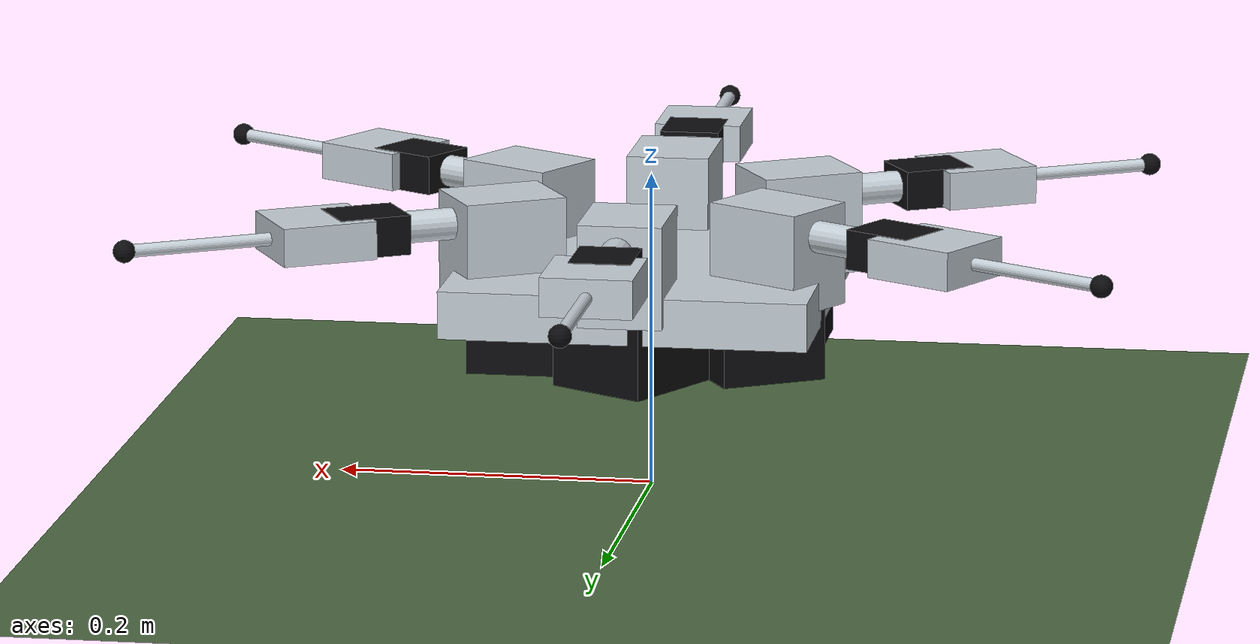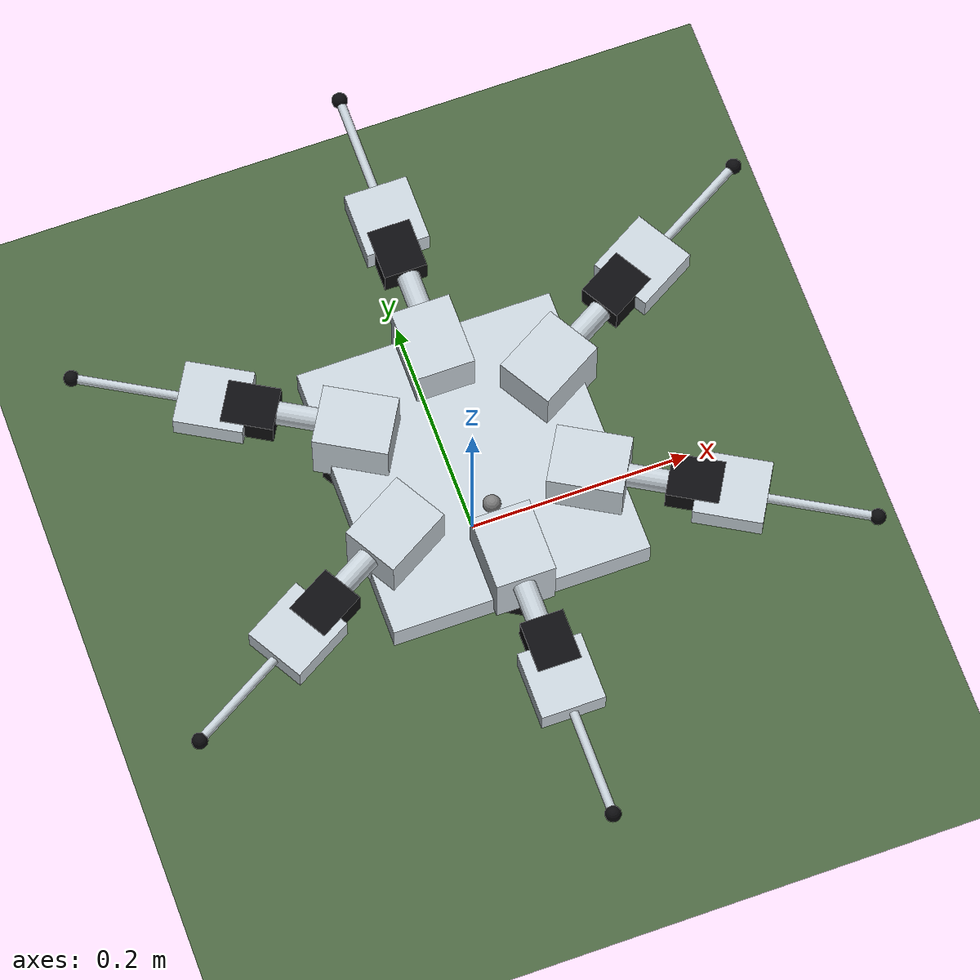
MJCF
<mujoco model="hexapod_sts3215_mesh_mjx">
  <compiler angle="radian" coordinate="local" autolimits="true"/>
  <option gravity="0 0 -9.81" timestep="0.002" iterations="50" solver="Newton" cone="elliptic"/>
  <visual>
    <global offwidth="1920" offheight="1200"/>
  </visual>

  <default>
    <joint armature="0.0004" damping="0.01" limited="true"/>
    <geom solref="0.006 1" solimp="0.95 0.99 0.001"/>
    <default class="visual">
      <geom contype="0" conaffinity="0" group="2" density="0"/>
    </default>
    <default class="collision">
      <geom group="3" rgba="1 0 0 0.18" condim="4" friction="1.3 0.04 0.0001"/>
    </default>
    <default class="foot">
      <geom group="3" rgba="0.02 0.02 0.02 1" condim="6" friction="2.0 0.1 0.001"
            solref="0.01 1" solimp="0.95 0.99 0.001"/>
    </default>
    <default class="legcol">
      <geom contype="4" conaffinity="0" group="3" rgba="1 0.55 0 0.25"
            condim="3" friction="1.0 0.02 0.0001"/>
    </default>
  </default>

  <asset>
    <texture name="skybox" type="skybox" builtin="gradient" rgb1="0.7 0.85 1.0" rgb2="0.4 0.5 0.7" width="256" height="256"/>
    <texture name="terrain_tex" type="2d" builtin="checker" rgb1="0.34 0.45 0.30" rgb2="0.26 0.36 0.22" width="320" height="320"/>
    <material name="terrain_mat" texture="terrain_tex" texrepeat="12 12" reflectance="0.05" shininess="0.0"/>
  </asset>

  <worldbody>
    <light name="sun" pos="2 -1.5 2.2" dir="-0.6 0.4 -1" castshadow="true"/>
    <geom name="terrain" type="plane" size="8 8 0.05" material="terrain_mat" friction="1.5 0.05 0.0001" condim="4" conaffinity="5"/>

    <body name="chassis" pos="0 0 0.125459">
      <freejoint name="root"/>
      <site name="chassis_imu" pos="0.002000 -0.043000 0.024800" size="0.008"/>
      <inertial pos="0.00017444 -0.00042499 0.00320286" quat="-0.01850534 0.70604293 0.02762688 0.70738793" mass="1.472688" diaginertia="7.0243e-03 4.6650e-03 4.6420e-03"/>
      <geom class="collision" name="chassis_box" type="box" pos="0.000000 0.000000 0.009000" size="0.114603 0.124852 0.015000"/>
      <geom class="visual" rgba="0.78 0.82 0.85 1" type="box" pos="0.000000 0.000000 0.009000" size="0.114603 0.124852 0.015000"/>
      <geom class="collision" name="lipo_battery_0" type="box" pos="0.009500 -0.016454 -0.019250" size="0.040976 0.033472 0.013250"/>
      <geom class="visual" rgba="0.16 0.16 0.24 1" type="box" pos="0.009500 -0.016454 -0.019250" size="0.040976 0.033472 0.013250"/>
      <geom class="collision" name="lipo_battery_1" type="box" pos="-0.009500 0.016454 -0.019250" size="0.040976 0.033472 0.013250"/>
      <geom class="visual" rgba="0.16 0.16 0.24 1" type="box" pos="-0.009500 0.016454 -0.019250" size="0.040976 0.033472 0.013250"/>
      <geom class="collision" name="L0_yaw_servo_col" type="box" pos="0.070514 0.040134 -0.014875" quat="1.00000000 0 0 0.00000000" size="0.035602 0.033771 0.025125"/>
      <geom class="visual" rgba="0.05 0.05 0.06 1" type="box" pos="0.070514 0.040134 -0.014875" quat="1.00000000 0 0 0.00000000" size="0.035602 0.033771 0.025125"/>
      <geom class="collision" name="L1_yaw_servo_col" type="box" pos="0.000500 0.081134 -0.014875" quat="0.86602540 0 0 0.50000000" size="0.035602 0.033771 0.025125"/>
      <geom class="visual" rgba="0.05 0.05 0.06 1" type="box" pos="0.000500 0.081134 -0.014875" quat="0.86602540 0 0 0.50000000" size="0.035602 0.033771 0.025125"/>
      <geom class="collision" name="L2_yaw_servo_col" type="box" pos="-0.070014 0.041000 -0.014875" quat="0.50000000 0 0 0.86602540" size="0.035602 0.033771 0.025125"/>
      <geom class="visual" rgba="0.05 0.05 0.06 1" type="box" pos="-0.070014 0.041000 -0.014875" quat="0.50000000 0 0 0.86602540" size="0.035602 0.033771 0.025125"/>
      <geom class="collision" name="L3_yaw_servo_col" type="box" pos="-0.070514 -0.040134 -0.014875" quat="0.00000000 0 0 1.00000000" size="0.035602 0.033771 0.025125"/>
      <geom class="visual" rgba="0.05 0.05 0.06 1" type="box" pos="-0.070514 -0.040134 -0.014875" quat="0.00000000 0 0 1.00000000" size="0.035602 0.033771 0.025125"/>
      <geom class="collision" name="L4_yaw_servo_col" type="box" pos="-0.000500 -0.081134 -0.014875" quat="-0.50000000 0 0 0.86602540" size="0.035602 0.033771 0.025125"/>
      <geom class="visual" rgba="0.05 0.05 0.06 1" type="box" pos="-0.000500 -0.081134 -0.014875" quat="-0.50000000 0 0 0.86602540" size="0.035602 0.033771 0.025125"/>
      <geom class="collision" name="L5_yaw_servo_col" type="box" pos="0.070014 -0.041000 -0.014875" quat="-0.86602540 0 0 0.50000000" size="0.035602 0.033771 0.025125"/>
      <geom class="visual" rgba="0.05 0.05 0.06 1" type="box" pos="0.070014 -0.041000 -0.014875" quat="-0.86602540 0 0 0.50000000" size="0.035602 0.033771 0.025125"/>

      <body name="L0_yaw" pos="0.086603 0.050000 0.015250" quat="0.96592583 0 0 0.25881905">
        <joint name="L0_yaw" type="hinge" axis="0 0 1" range="-0.61 0.61"/>
        <inertial pos="-0.00045307 -0.00127815 0.03147338" quat="0.72531512 0.00583168 -0.03206965 0.68764489" mass="0.161884" diaginertia="8.0633e-05 6.4028e-05 5.1623e-05"/>
        <geom class="visual" rgba="0.78 0.82 0.85 1" type="box" pos="0.000000 0.000000 0.023150" size="0.032700 0.026200 0.032150"/>
        <geom class="visual" rgba="0.05 0.05 0.06 1" type="box" pos="0.000000 0.000500 0.038400" size="0.022700 0.019150 0.012400"/>
        <body name="L0_femur" pos="0.012500 -0.025650 0.038400">
          <joint name="L0_pitch" type="hinge" axis="0 1 0" range="-1.4 0.52"/>
          <inertial pos="0.06408185 0.02393982 0.00175845" quat="-0.00747942 0.69471490 -0.01452282 0.71909969" mass="0.143475" diaginertia="1.5226e-04 1.4084e-04 3.4208e-05"/>
          <geom class="legcol" name="L0_femur_col" type="capsule" fromto="0 0.024150 0 0.090000 0.024150 0" size="0.010"/>
          <geom class="legcol" name="L0_knee_servo_col" type="box" pos="0.077500 0.026150 -0.000000" size="0.022700 0.019150 0.012400"/>
          <geom class="visual" rgba="0.78 0.82 0.85 1" type="capsule" fromto="0 0.024150 0 0.090000 0.024150 0" size="0.010"/>
          <geom class="visual" rgba="0.05 0.05 0.06 1" type="box" pos="0.077500 0.026150 -0.000000" size="0.022700 0.019150 0.012400"/>
          <body name="L0_tibia" pos="0.090000 0 0">
            <joint name="L0_knee" type="hinge" axis="0 1 0" range="-0.35 2.62"/>
            <inertial pos="0.02283314 0.02415000 -0.00000000" quat="-0.00000000 0.70710678 0.00000000 0.70710678" mass="0.029727" diaginertia="3.7180e-05 2.9908e-05 8.8284e-06"/>
            <geom class="legcol" name="L0_tibia_yoke_col" type="box" pos="0.019500 0.024150 -0.000000" size="0.030000 0.028150 0.012000"/>
            <geom class="legcol" name="L0_tibia_col" type="capsule" fromto="0.029500 0.024150 0.000000 0.138000 0.024150 0.000000" size="0.004000"/>
            <geom class="visual" rgba="0.78 0.82 0.85 1" type="box" pos="0.019500 0.024150 -0.000000" size="0.030000 0.028150 0.012000"/>
            <geom class="visual" rgba="0.78 0.82 0.85 1" type="capsule" fromto="0.029500 0.024150 0.000000 0.138000 0.024150 0.000000" size="0.004000"/>
            <body name="L0_pad" pos="0.138000 0.024150 0.000000">
              <inertial pos="-0.00471403 0.00000000 -0.00000000" quat="0.50000000 0.50000000 0.50000000 0.50000000" mass="0.003000" diaginertia="2.2324e-07 2.2324e-07 6.7374e-08"/>
              <geom class="foot" name="L0_foot" type="sphere" pos="0.005000 0 0" size="0.007000"/>
              <geom class="visual" rgba="0.05 0.05 0.06 1" type="sphere" pos="0.005000 0 0" size="0.007000"/>
              <site name="L0_foot_site" pos="0.005000 0 0" size="0.018" group="4" rgba="1 1 1 0.05"/>
            </body>
          </body>
        </body>
      </body>
      <body name="L1_yaw" pos="0.000000 0.100000 0.015250" quat="0.70710678 0 0 0.70710678">
        <joint name="L1_yaw" type="hinge" axis="0 0 1" range="-0.61 0.61"/>
        <inertial pos="-0.00045307 -0.00127815 0.03147338" quat="0.72531512 0.00583168 -0.03206965 0.68764489" mass="0.161884" diaginertia="8.0633e-05 6.4028e-05 5.1623e-05"/>
        <geom class="visual" rgba="0.78 0.82 0.85 1" type="box" pos="0.000000 0.000000 0.023150" size="0.032700 0.026200 0.032150"/>
        <geom class="visual" rgba="0.05 0.05 0.06 1" type="box" pos="0.000000 0.000500 0.038400" size="0.022700 0.019150 0.012400"/>
        <body name="L1_femur" pos="0.012500 -0.025650 0.038400">
          <joint name="L1_pitch" type="hinge" axis="0 1 0" range="-1.4 0.52"/>
          <inertial pos="0.06408185 0.02393982 0.00175845" quat="-0.00747942 0.69471490 -0.01452282 0.71909969" mass="0.143475" diaginertia="1.5226e-04 1.4084e-04 3.4208e-05"/>
          <geom class="legcol" name="L1_femur_col" type="capsule" fromto="0 0.024150 0 0.090000 0.024150 0" size="0.010"/>
          <geom class="legcol" name="L1_knee_servo_col" type="box" pos="0.077500 0.026150 -0.000000" size="0.022700 0.019150 0.012400"/>
          <geom class="visual" rgba="0.78 0.82 0.85 1" type="capsule" fromto="0 0.024150 0 0.090000 0.024150 0" size="0.010"/>
          <geom class="visual" rgba="0.05 0.05 0.06 1" type="box" pos="0.077500 0.026150 -0.000000" size="0.022700 0.019150 0.012400"/>
          <body name="L1_tibia" pos="0.090000 0 0">
            <joint name="L1_knee" type="hinge" axis="0 1 0" range="-0.35 2.62"/>
            <inertial pos="0.02313589 0.02415000 -0.00000000" quat="-0.00000000 0.70710678 0.00000000 0.70710678" mass="0.029727" diaginertia="3.8624e-05 3.1351e-05 8.8284e-06"/>
            <geom class="legcol" name="L1_tibia_yoke_col" type="box" pos="0.019500 0.024150 -0.000000" size="0.030000 0.028150 0.012000"/>
            <geom class="legcol" name="L1_tibia_col" type="capsule" fromto="0.029500 0.024150 0.000000 0.142000 0.024150 0.000000" size="0.004000"/>
            <geom class="visual" rgba="0.78 0.82 0.85 1" type="box" pos="0.019500 0.024150 -0.000000" size="0.030000 0.028150 0.012000"/>
            <geom class="visual" rgba="0.78 0.82 0.85 1" type="capsule" fromto="0.029500 0.024150 0.000000 0.142000 0.024150 0.000000" size="0.004000"/>
            <body name="L1_pad" pos="0.142000 0.024150 0.000000">
              <inertial pos="-0.00649168 0.00000000 -0.00000000" quat="0.50000000 0.50000000 0.50000000 0.50000000" mass="0.003000" diaginertia="1.7479e-07 1.7479e-07 6.5833e-08"/>
              <geom class="foot" name="L1_foot" type="sphere" pos="0.001000 0 0" size="0.007000"/>
              <geom class="visual" rgba="0.05 0.05 0.06 1" type="sphere" pos="0.001000 0 0" size="0.007000"/>
              <site name="L1_foot_site" pos="0.001000 0 0" size="0.018" group="4" rgba="1 1 1 0.05"/>
            </body>
          </body>
        </body>
      </body>
      <body name="L2_yaw" pos="-0.086603 0.050000 0.015250" quat="0.25881905 0 0 0.96592583">
        <joint name="L2_yaw" type="hinge" axis="0 0 1" range="-0.61 0.61"/>
        <inertial pos="-0.00045307 -0.00127815 0.03147338" quat="0.72531512 0.00583168 -0.03206965 0.68764489" mass="0.161884" diaginertia="8.0633e-05 6.4028e-05 5.1623e-05"/>
        <geom class="visual" rgba="0.78 0.82 0.85 1" type="box" pos="0.000000 0.000000 0.023150" size="0.032700 0.026200 0.032150"/>
        <geom class="visual" rgba="0.05 0.05 0.06 1" type="box" pos="0.000000 0.000500 0.038400" size="0.022700 0.019150 0.012400"/>
        <body name="L2_femur" pos="0.012500 -0.025650 0.038400">
          <joint name="L2_pitch" type="hinge" axis="0 1 0" range="-1.4 0.52"/>
          <inertial pos="0.06408185 0.02393982 0.00175845" quat="-0.00747942 0.69471490 -0.01452282 0.71909969" mass="0.143475" diaginertia="1.5226e-04 1.4084e-04 3.4208e-05"/>
          <geom class="legcol" name="L2_femur_col" type="capsule" fromto="0 0.024150 0 0.090000 0.024150 0" size="0.010"/>
          <geom class="legcol" name="L2_knee_servo_col" type="box" pos="0.077500 0.026150 -0.000000" size="0.022700 0.019150 0.012400"/>
          <geom class="visual" rgba="0.78 0.82 0.85 1" type="capsule" fromto="0 0.024150 0 0.090000 0.024150 0" size="0.010"/>
          <geom class="visual" rgba="0.05 0.05 0.06 1" type="box" pos="0.077500 0.026150 -0.000000" size="0.022700 0.019150 0.012400"/>
          <body name="L2_tibia" pos="0.090000 0 0">
            <joint name="L2_knee" type="hinge" axis="0 1 0" range="-0.35 2.62"/>
            <inertial pos="0.02313589 0.02415000 -0.00000000" quat="-0.00000000 0.70710678 0.00000000 0.70710678" mass="0.029727" diaginertia="3.8624e-05 3.1351e-05 8.8284e-06"/>
            <geom class="legcol" name="L2_tibia_yoke_col" type="box" pos="0.019500 0.024150 -0.000000" size="0.030000 0.028150 0.012000"/>
            <geom class="legcol" name="L2_tibia_col" type="capsule" fromto="0.029500 0.024150 0.000000 0.142000 0.024150 0.000000" size="0.004000"/>
            <geom class="visual" rgba="0.78 0.82 0.85 1" type="box" pos="0.019500 0.024150 -0.000000" size="0.030000 0.028150 0.012000"/>
            <geom class="visual" rgba="0.78 0.82 0.85 1" type="capsule" fromto="0.029500 0.024150 0.000000 0.142000 0.024150 0.000000" size="0.004000"/>
            <body name="L2_pad" pos="0.142000 0.024150 0.000000">
              <inertial pos="-0.00649168 0.00000000 -0.00000000" quat="0.50000000 0.50000000 0.50000000 0.50000000" mass="0.003000" diaginertia="1.7479e-07 1.7479e-07 6.5833e-08"/>
              <geom class="foot" name="L2_foot" type="sphere" pos="0.001000 0 0" size="0.007000"/>
              <geom class="visual" rgba="0.05 0.05 0.06 1" type="sphere" pos="0.001000 0 0" size="0.007000"/>
              <site name="L2_foot_site" pos="0.001000 0 0" size="0.018" group="4" rgba="1 1 1 0.05"/>
            </body>
          </body>
        </body>
      </body>
      <body name="L3_yaw" pos="-0.086603 -0.050000 0.015250" quat="-0.25881905 0 0 0.96592583">
        <joint name="L3_yaw" type="hinge" axis="0 0 1" range="-0.61 0.61"/>
        <inertial pos="-0.00045307 -0.00127815 0.03147338" quat="0.72531512 0.00583168 -0.03206965 0.68764489" mass="0.161884" diaginertia="8.0633e-05 6.4028e-05 5.1623e-05"/>
        <geom class="visual" rgba="0.78 0.82 0.85 1" type="box" pos="0.000000 0.000000 0.023150" size="0.032700 0.026200 0.032150"/>
        <geom class="visual" rgba="0.05 0.05 0.06 1" type="box" pos="0.000000 0.000500 0.038400" size="0.022700 0.019150 0.012400"/>
        <body name="L3_femur" pos="0.012500 -0.025650 0.038400">
          <joint name="L3_pitch" type="hinge" axis="0 1 0" range="-1.4 0.52"/>
          <inertial pos="0.06408185 0.02393982 0.00175845" quat="-0.00747942 0.69471490 -0.01452282 0.71909969" mass="0.143475" diaginertia="1.5226e-04 1.4084e-04 3.4208e-05"/>
          <geom class="legcol" name="L3_femur_col" type="capsule" fromto="0 0.024150 0 0.090000 0.024150 0" size="0.010"/>
          <geom class="legcol" name="L3_knee_servo_col" type="box" pos="0.077500 0.026150 -0.000000" size="0.022700 0.019150 0.012400"/>
          <geom class="visual" rgba="0.78 0.82 0.85 1" type="capsule" fromto="0 0.024150 0 0.090000 0.024150 0" size="0.010"/>
          <geom class="visual" rgba="0.05 0.05 0.06 1" type="box" pos="0.077500 0.026150 -0.000000" size="0.022700 0.019150 0.012400"/>
          <body name="L3_tibia" pos="0.090000 0 0">
            <joint name="L3_knee" type="hinge" axis="0 1 0" range="-0.35 2.62"/>
            <inertial pos="0.02313589 0.02415000 -0.00000000" quat="-0.00000000 0.70710678 0.00000000 0.70710678" mass="0.029727" diaginertia="3.8624e-05 3.1351e-05 8.8284e-06"/>
            <geom class="legcol" name="L3_tibia_yoke_col" type="box" pos="0.019500 0.024150 -0.000000" size="0.030000 0.028150 0.012000"/>
            <geom class="legcol" name="L3_tibia_col" type="capsule" fromto="0.029500 0.024150 0.000000 0.142000 0.024150 0.000000" size="0.004000"/>
            <geom class="visual" rgba="0.78 0.82 0.85 1" type="box" pos="0.019500 0.024150 -0.000000" size="0.030000 0.028150 0.012000"/>
            <geom class="visual" rgba="0.78 0.82 0.85 1" type="capsule" fromto="0.029500 0.024150 0.000000 0.142000 0.024150 0.000000" size="0.004000"/>
            <body name="L3_pad" pos="0.142000 0.024150 0.000000">
              <inertial pos="-0.00649168 0.00000000 -0.00000000" quat="0.50000000 0.50000000 0.50000000 0.50000000" mass="0.003000" diaginertia="1.7479e-07 1.7479e-07 6.5833e-08"/>
              <geom class="foot" name="L3_foot" type="sphere" pos="0.001000 0 0" size="0.007000"/>
              <geom class="visual" rgba="0.05 0.05 0.06 1" type="sphere" pos="0.001000 0 0" size="0.007000"/>
              <site name="L3_foot_site" pos="0.001000 0 0" size="0.018" group="4" rgba="1 1 1 0.05"/>
            </body>
          </body>
        </body>
      </body>
      <body name="L4_yaw" pos="-0.000000 -0.100000 0.015250" quat="-0.70710678 0 0 0.70710678">
        <joint name="L4_yaw" type="hinge" axis="0 0 1" range="-0.61 0.61"/>
        <inertial pos="-0.00045307 -0.00127815 0.03147338" quat="0.72531512 0.00583168 -0.03206965 0.68764489" mass="0.161884" diaginertia="8.0633e-05 6.4028e-05 5.1623e-05"/>
        <geom class="visual" rgba="0.78 0.82 0.85 1" type="box" pos="0.000000 0.000000 0.023150" size="0.032700 0.026200 0.032150"/>
        <geom class="visual" rgba="0.05 0.05 0.06 1" type="box" pos="0.000000 0.000500 0.038400" size="0.022700 0.019150 0.012400"/>
        <body name="L4_femur" pos="0.012500 -0.025650 0.038400">
          <joint name="L4_pitch" type="hinge" axis="0 1 0" range="-1.4 0.52"/>
          <inertial pos="0.06408185 0.02393982 0.00175845" quat="-0.00747942 0.69471490 -0.01452282 0.71909969" mass="0.143475" diaginertia="1.5226e-04 1.4084e-04 3.4208e-05"/>
          <geom class="legcol" name="L4_femur_col" type="capsule" fromto="0 0.024150 0 0.090000 0.024150 0" size="0.010"/>
          <geom class="legcol" name="L4_knee_servo_col" type="box" pos="0.077500 0.026150 -0.000000" size="0.022700 0.019150 0.012400"/>
          <geom class="visual" rgba="0.78 0.82 0.85 1" type="capsule" fromto="0 0.024150 0 0.090000 0.024150 0" size="0.010"/>
          <geom class="visual" rgba="0.05 0.05 0.06 1" type="box" pos="0.077500 0.026150 -0.000000" size="0.022700 0.019150 0.012400"/>
          <body name="L4_tibia" pos="0.090000 0 0">
            <joint name="L4_knee" type="hinge" axis="0 1 0" range="-0.35 2.62"/>
            <inertial pos="0.02283314 0.02415000 -0.00000000" quat="-0.00000000 0.70710678 0.00000000 0.70710678" mass="0.029727" diaginertia="3.7180e-05 2.9908e-05 8.8284e-06"/>
            <geom class="legcol" name="L4_tibia_yoke_col" type="box" pos="0.019500 0.024150 -0.000000" size="0.030000 0.028150 0.012000"/>
            <geom class="legcol" name="L4_tibia_col" type="capsule" fromto="0.029500 0.024150 0.000000 0.138000 0.024150 0.000000" size="0.004000"/>
            <geom class="visual" rgba="0.78 0.82 0.85 1" type="box" pos="0.019500 0.024150 -0.000000" size="0.030000 0.028150 0.012000"/>
            <geom class="visual" rgba="0.78 0.82 0.85 1" type="capsule" fromto="0.029500 0.024150 0.000000 0.138000 0.024150 0.000000" size="0.004000"/>
            <body name="L4_pad" pos="0.138000 0.024150 0.000000">
              <inertial pos="-0.00471403 0.00000000 -0.00000000" quat="0.50000000 0.50000000 0.50000000 0.50000000" mass="0.003000" diaginertia="2.2324e-07 2.2324e-07 6.7374e-08"/>
              <geom class="foot" name="L4_foot" type="sphere" pos="0.005000 0 0" size="0.007000"/>
              <geom class="visual" rgba="0.05 0.05 0.06 1" type="sphere" pos="0.005000 0 0" size="0.007000"/>
              <site name="L4_foot_site" pos="0.005000 0 0" size="0.018" group="4" rgba="1 1 1 0.05"/>
            </body>
          </body>
        </body>
      </body>
      <body name="L5_yaw" pos="0.086603 -0.050000 0.015250" quat="-0.96592583 0 0 0.25881905">
        <joint name="L5_yaw" type="hinge" axis="0 0 1" range="-0.61 0.61"/>
        <inertial pos="-0.00045307 -0.00127815 0.03147338" quat="0.72531512 0.00583168 -0.03206965 0.68764489" mass="0.161884" diaginertia="8.0633e-05 6.4028e-05 5.1623e-05"/>
        <geom class="visual" rgba="0.78 0.82 0.85 1" type="box" pos="0.000000 0.000000 0.023150" size="0.032700 0.026200 0.032150"/>
        <geom class="visual" rgba="0.05 0.05 0.06 1" type="box" pos="0.000000 0.000500 0.038400" size="0.022700 0.019150 0.012400"/>
        <body name="L5_femur" pos="0.012500 -0.025650 0.038400">
          <joint name="L5_pitch" type="hinge" axis="0 1 0" range="-1.4 0.52"/>
          <inertial pos="0.06408185 0.02393982 0.00175845" quat="-0.00747942 0.69471490 -0.01452282 0.71909969" mass="0.143475" diaginertia="1.5226e-04 1.4084e-04 3.4208e-05"/>
          <geom class="legcol" name="L5_femur_col" type="capsule" fromto="0 0.024150 0 0.090000 0.024150 0" size="0.010"/>
          <geom class="legcol" name="L5_knee_servo_col" type="box" pos="0.077500 0.026150 -0.000000" size="0.022700 0.019150 0.012400"/>
          <geom class="visual" rgba="0.78 0.82 0.85 1" type="capsule" fromto="0 0.024150 0 0.090000 0.024150 0" size="0.010"/>
          <geom class="visual" rgba="0.05 0.05 0.06 1" type="box" pos="0.077500 0.026150 -0.000000" size="0.022700 0.019150 0.012400"/>
          <body name="L5_tibia" pos="0.090000 0 0">
            <joint name="L5_knee" type="hinge" axis="0 1 0" range="-0.35 2.62"/>
            <inertial pos="0.02313589 0.02415000 -0.00000000" quat="-0.00000000 0.70710678 0.00000000 0.70710678" mass="0.029727" diaginertia="3.8624e-05 3.1351e-05 8.8284e-06"/>
            <geom class="legcol" name="L5_tibia_yoke_col" type="box" pos="0.019500 0.024150 -0.000000" size="0.030000 0.028150 0.012000"/>
            <geom class="legcol" name="L5_tibia_col" type="capsule" fromto="0.029500 0.024150 0.000000 0.142000 0.024150 0.000000" size="0.004000"/>
            <geom class="visual" rgba="0.78 0.82 0.85 1" type="box" pos="0.019500 0.024150 -0.000000" size="0.030000 0.028150 0.012000"/>
            <geom class="visual" rgba="0.78 0.82 0.85 1" type="capsule" fromto="0.029500 0.024150 0.000000 0.142000 0.024150 0.000000" size="0.004000"/>
            <body name="L5_pad" pos="0.142000 0.024150 0.000000">
              <inertial pos="-0.00649168 0.00000000 -0.00000000" quat="0.50000000 0.50000000 0.50000000 0.50000000" mass="0.003000" diaginertia="1.7479e-07 1.7479e-07 6.5833e-08"/>
              <geom class="foot" name="L5_foot" type="sphere" pos="0.001000 0 0" size="0.007000"/>
              <geom class="visual" rgba="0.05 0.05 0.06 1" type="sphere" pos="0.001000 0 0" size="0.007000"/>
              <site name="L5_foot_site" pos="0.001000 0 0" size="0.018" group="4" rgba="1 1 1 0.05"/>
            </body>
          </body>
        </body>
      </body>
    </body>
  </worldbody>

  <actuator>
    <position name="L0_yaw" joint="L0_yaw" kp="18.0" forcerange="-2.2 2.2"/>
    <position name="L0_pitch" joint="L0_pitch" kp="26.0" forcerange="-2.2 2.2"/>
    <position name="L0_knee" joint="L0_knee" kp="24.0" forcerange="-2.2 2.2"/>
    <velocity name="L0_yaw_d" joint="L0_yaw" kv="0.35" forcerange="-2.2 2.2"/>
    <velocity name="L0_pitch_d" joint="L0_pitch" kv="0.45" forcerange="-2.2 2.2"/>
    <velocity name="L0_knee_d" joint="L0_knee" kv="0.4" forcerange="-2.2 2.2"/>
    <position name="L1_yaw" joint="L1_yaw" kp="18.0" forcerange="-2.2 2.2"/>
    <position name="L1_pitch" joint="L1_pitch" kp="26.0" forcerange="-2.2 2.2"/>
    <position name="L1_knee" joint="L1_knee" kp="24.0" forcerange="-2.2 2.2"/>
    <velocity name="L1_yaw_d" joint="L1_yaw" kv="0.35" forcerange="-2.2 2.2"/>
    <velocity name="L1_pitch_d" joint="L1_pitch" kv="0.45" forcerange="-2.2 2.2"/>
    <velocity name="L1_knee_d" joint="L1_knee" kv="0.4" forcerange="-2.2 2.2"/>
    <position name="L2_yaw" joint="L2_yaw" kp="18.0" forcerange="-2.2 2.2"/>
    <position name="L2_pitch" joint="L2_pitch" kp="26.0" forcerange="-2.2 2.2"/>
    <position name="L2_knee" joint="L2_knee" kp="24.0" forcerange="-2.2 2.2"/>
    <velocity name="L2_yaw_d" joint="L2_yaw" kv="0.35" forcerange="-2.2 2.2"/>
    <velocity name="L2_pitch_d" joint="L2_pitch" kv="0.45" forcerange="-2.2 2.2"/>
    <velocity name="L2_knee_d" joint="L2_knee" kv="0.4" forcerange="-2.2 2.2"/>
    <position name="L3_yaw" joint="L3_yaw" kp="18.0" forcerange="-2.2 2.2"/>
    <position name="L3_pitch" joint="L3_pitch" kp="26.0" forcerange="-2.2 2.2"/>
    <position name="L3_knee" joint="L3_knee" kp="24.0" forcerange="-2.2 2.2"/>
    <velocity name="L3_yaw_d" joint="L3_yaw" kv="0.35" forcerange="-2.2 2.2"/>
    <velocity name="L3_pitch_d" joint="L3_pitch" kv="0.45" forcerange="-2.2 2.2"/>
    <velocity name="L3_knee_d" joint="L3_knee" kv="0.4" forcerange="-2.2 2.2"/>
    <position name="L4_yaw" joint="L4_yaw" kp="18.0" forcerange="-2.2 2.2"/>
    <position name="L4_pitch" joint="L4_pitch" kp="26.0" forcerange="-2.2 2.2"/>
    <position name="L4_knee" joint="L4_knee" kp="24.0" forcerange="-2.2 2.2"/>
    <velocity name="L4_yaw_d" joint="L4_yaw" kv="0.35" forcerange="-2.2 2.2"/>
    <velocity name="L4_pitch_d" joint="L4_pitch" kv="0.45" forcerange="-2.2 2.2"/>
    <velocity name="L4_knee_d" joint="L4_knee" kv="0.4" forcerange="-2.2 2.2"/>
    <position name="L5_yaw" joint="L5_yaw" kp="18.0" forcerange="-2.2 2.2"/>
    <position name="L5_pitch" joint="L5_pitch" kp="26.0" forcerange="-2.2 2.2"/>
    <position name="L5_knee" joint="L5_knee" kp="24.0" forcerange="-2.2 2.2"/>
    <velocity name="L5_yaw_d" joint="L5_yaw" kv="0.35" forcerange="-2.2 2.2"/>
    <velocity name="L5_pitch_d" joint="L5_pitch" kv="0.45" forcerange="-2.2 2.2"/>
    <velocity name="L5_knee_d" joint="L5_knee" kv="0.4" forcerange="-2.2 2.2"/>
  </actuator>

  <sensor>
    <jointpos name="L0_yaw_p" joint="L0_yaw"/>
    <jointpos name="L0_pitch_p" joint="L0_pitch"/>
    <jointpos name="L0_knee_p" joint="L0_knee"/>
    <touch name="L0_foot_t" site="L0_foot_site"/>
    <jointpos name="L1_yaw_p" joint="L1_yaw"/>
    <jointpos name="L1_pitch_p" joint="L1_pitch"/>
    <jointpos name="L1_knee_p" joint="L1_knee"/>
    <touch name="L1_foot_t" site="L1_foot_site"/>
    <jointpos name="L2_yaw_p" joint="L2_yaw"/>
    <jointpos name="L2_pitch_p" joint="L2_pitch"/>
    <jointpos name="L2_knee_p" joint="L2_knee"/>
    <touch name="L2_foot_t" site="L2_foot_site"/>
    <jointpos name="L3_yaw_p" joint="L3_yaw"/>
    <jointpos name="L3_pitch_p" joint="L3_pitch"/>
    <jointpos name="L3_knee_p" joint="L3_knee"/>
    <touch name="L3_foot_t" site="L3_foot_site"/>
    <jointpos name="L4_yaw_p" joint="L4_yaw"/>
    <jointpos name="L4_pitch_p" joint="L4_pitch"/>
    <jointpos name="L4_knee_p" joint="L4_knee"/>
    <touch name="L4_foot_t" site="L4_foot_site"/>
    <jointpos name="L5_yaw_p" joint="L5_yaw"/>
    <jointpos name="L5_pitch_p" joint="L5_pitch"/>
    <jointpos name="L5_knee_p" joint="L5_knee"/>
    <touch name="L5_foot_t" site="L5_foot_site"/>
    <accelerometer name="chassis_acc" site="chassis_imu"/>
    <gyro name="chassis_gyro" site="chassis_imu"/>
    <framepos name="chassis_pos" objtype="body" objname="chassis"/>
    <framezaxis name="chassis_up" objtype="body" objname="chassis"/>
  </sensor>

  <keyframe>
    <key name="plant" qpos="0 0 0.125459 1 0 0 0 0.000000 0.349066 1.396263 0.000000 0.349066 1.396263 0.000000 0.349066 1.396263 0.000000 0.349066 1.396263 0.000000 0.349066 1.396263 0.000000 0.349066 1.396263" ctrl="0.000000 0.349066 1.396263 0 0 0 0.000000 0.349066 1.396263 0 0 0 0.000000 0.349066 1.396263 0 0 0 0.000000 0.349066 1.396263 0 0 0 0.000000 0.349066 1.396263 0 0 0 0.000000 0.349066 1.396263 0 0 0"/>
    <key name="stance" qpos="0 0 0.040500 1 0 0 0 0.000000 -0.436332 1.308997 0.000000 -0.436332 1.308997 0.000000 -0.436332 1.308997 0.000000 -0.436332 1.308997 0.000000 -0.436332 1.308997 0.000000 -0.436332 1.308997" ctrl="0.000000 -0.436332 1.308997 0 0 0 0.000000 -0.436332 1.308997 0 0 0 0.000000 -0.436332 1.308997 0 0 0 0.000000 -0.436332 1.308997 0 0 0 0.000000 -0.436332 1.308997 0 0 0 0.000000 -0.436332 1.308997 0 0 0"/>
  </keyframe>
</mujoco>
